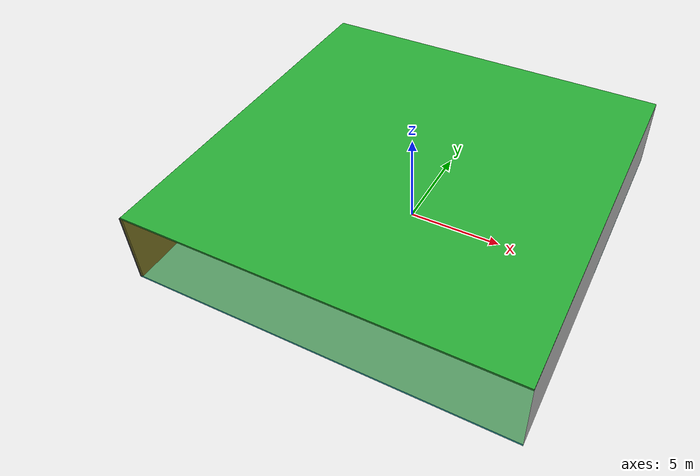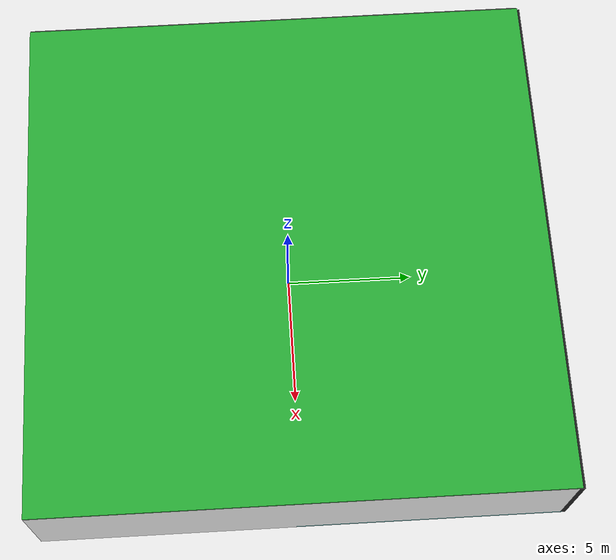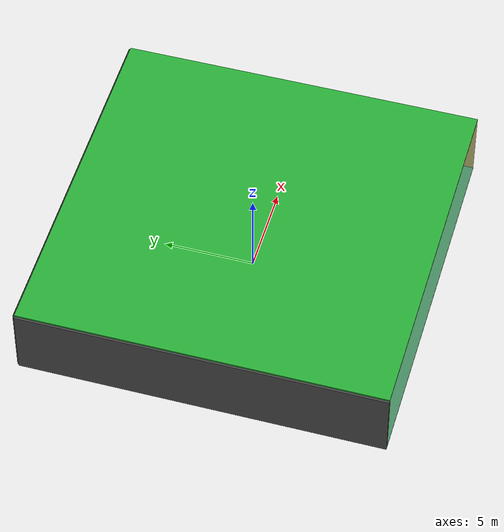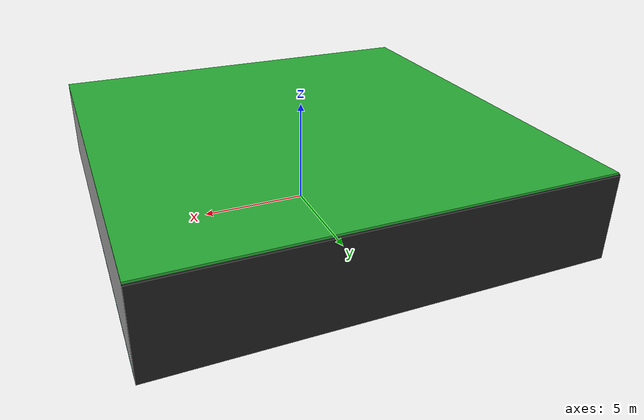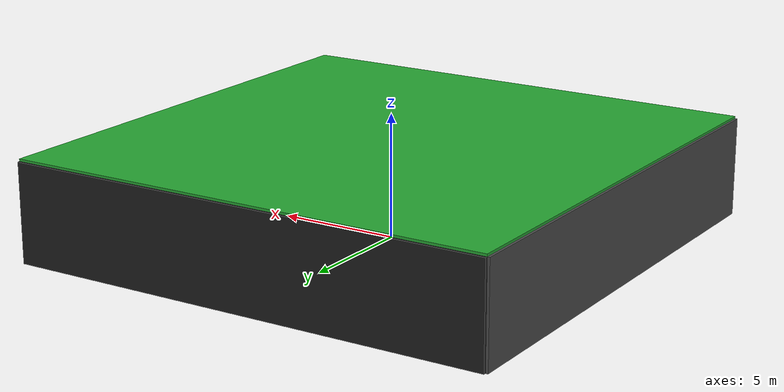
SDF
<sdf version="1.4">
 <world name="default">
  <physics type="ode">
   <max_step_size>0.001</max_step_size>
   <real_time_factor>1</real_time_factor>
   <real_time_update_rate>1000</real_time_update_rate>
   <gravity>0 0 -9.8</gravity>
  </physics>
  <scene><ambient>0.4 0.4 0.4 1</ambient><background>0.7 0.7 0.7 1</background><shadows>1</shadows></scene>
  <model name="Surrounding">
   <static>1</static>
   <link name="Ceiling">
    <collision name="Ceiling_Collision"><geometry><box><size>20 20 0.1</size></box></geometry></collision>
    <visual name="Ceiling_Visual">
     <geometry><box><size>20 20 0.1</size></box></geometry>
     <material>
      <script><uri>file://media/materials/scripts/gazebo.material</uri><name>Gazebo/GreenGlow</name></script>
     </material>
    </visual>
    <pose>0 0 4.05 0 0 0</pose>
   </link>
   <link name="Wall_South">
    <collision name="Wall_South_Collision">
     <geometry><box><size>20 0 4</size></box></geometry>
     <pose>0 0 2 0 -0 0</pose>
    </collision>
    <visual name="Wall_South_Visual">
     <pose>0 0 2 0 -0 0</pose>
     <geometry><box><size>20 0 4</size></box></geometry>
     <material>
      <script>
       <uri>file://media/materials/scripts/gazebo.material</uri>
       <name>Gazebo/YellowTransparent</name>
      </script>
     </material>
    </visual>
    <velocity_decay><linear>0</linear><angular>0</angular></velocity_decay>
    <pose>0 -10 0 0 -0 0</pose>
   </link>
   <link name="Wall_East">
    <collision name="Wall_21_Collision">
     <geometry><box><size>20 0 4</size></box></geometry>
     <pose>0 0 2 0 -0 0</pose>
    </collision>
    <visual name="Wall_21_Visual">
     <pose>0 0 2 0 -0 0</pose>
     <geometry><box><size>20 0 4</size></box></geometry>
     <material>
      <script><uri>file://media/materials/scripts/gazebo.material</uri><name>Gazebo/WhiteGlow</name></script>
     </material>
    </visual>
    <velocity_decay><linear>0</linear><angular>0</angular></velocity_decay>
    <pose>10 0 0 0 -0 1.5708</pose>
   </link>
   <link name="Wall_North">
    <collision name="Wall_22_Collision">
     <geometry><box><size>20 0.2 4</size></box></geometry>
     <pose>0 0 2 0 -0 0</pose>
    </collision>
    <visual name="Wall_22_Visual">
     <pose>0 0 2 0 -0 0</pose>
     <geometry><box><size>20 0.2 4</size></box></geometry>
     <material>
      <script><uri>file://media/materials/scripts/gazebo.material</uri><name>Gazebo/Black</name></script>
     </material>
    </visual>
    <velocity_decay><linear>0</linear><angular>0</angular></velocity_decay>
    <pose>0 10 0 0 -0 0</pose>
   </link>
   <link name="Wall_West">
    <collision name="Wall_23_Collision">
     <geometry><box><size>20 0.2 4</size></box></geometry>
     <pose>0 0 2 0 -0 0</pose>
    </collision>
    <visual name="Wall_23_Visual">
     <pose>0 0 2 0 -0 0</pose>
     <geometry><box><size>20 0.2 4</size></box></geometry>
     <material>
      <script><uri>file://media/materials/scripts/gazebo.material</uri><name>Gazebo/DarkGrey</name></script>
     </material>
    </visual>
    <velocity_decay><linear>0</linear><angular>0</angular></velocity_decay>
    <pose>-10 0 0 0 0 -1.5708</pose>
   </link>
   <link name="Ground_link">
    <collision name="collision">
     <pose>0 0 .05 0 -0 0</pose>
     <geometry><box><size>20 20 0.1</size></box></geometry>
    </collision>
    <visual name="visual">
     <pose>0 0 .05 0 -0 0</pose>
     <geometry><box><size>20 20 0.1</size></box></geometry>
     <material>
      <script>
       <uri>file://media/materials/scripts/gazebo.material</uri>
       <name>Gazebo/TurquoiseGlowOutline</name>
      </script>
     </material>
    </visual>
   </link>
   <static>1</static>
  </model>
  <spherical_coordinates>
   <surface_model>EARTH_WGS84</surface_model>
   <latitude_deg>0</latitude_deg>
   <longitude_deg>0</longitude_deg>
   <elevation>0</elevation>
   <heading_deg>0</heading_deg>
  </spherical_coordinates>
  <light name="lightball_0" type="diffuse">
   <diffuse>0.8 0.8 0.8 1</diffuse>
   <specular>0.2 0.2 0.2 1</specular>
   <attenuation>
    <range>100</range>
    <constant>0.7</constant>
    <linear>0.01</linear>
    <quadratic>0.001</quadratic>
   </attenuation>
   <direction>-0.5 0.1 -0.9</direction>
   <pose>-8.23664989023 6.800165422 2.76984490506 0 0 0</pose>
  </light>
  <light name="lightball_1" type="diffuse">
   <diffuse>0.8 0.8 0.8 1</diffuse>
   <specular>0.2 0.2 0.2 1</specular>
   <attenuation>
    <range>100</range>
    <constant>0.7</constant>
    <linear>0.01</linear>
    <quadratic>0.001</quadratic>
   </attenuation>
   <direction>-0.5 0.1 -0.9</direction>
   <pose>-1.71199901149 1.37757113081 3.85324247282 0 0 0</pose>
  </light>
  <light name="lightball_2" type="diffuse">
   <diffuse>0.8 0.8 0.8 1</diffuse>
   <specular>0.2 0.2 0.2 1</specular>
   <attenuation>
    <range>100</range>
    <constant>0.7</constant>
    <linear>0.01</linear>
    <quadratic>0.001</quadratic>
   </attenuation>
   <direction>-0.5 0.1 -0.9</direction>
   <pose>-5.22210921956 8.53621760629 1.9903797184 0 0 0</pose>
  </light>
  <light name="lightball_3" type="diffuse">
   <diffuse>0.8 0.8 0.8 1</diffuse>
   <specular>0.2 0.2 0.2 1</specular>
   <attenuation>
    <range>100</range>
    <constant>0.7</constant>
    <linear>0.01</linear>
    <quadratic>0.001</quadratic>
   </attenuation>
   <direction>-0.5 0.1 -0.9</direction>
   <pose>7.25136256309 8.87317792197 2.54636958319 0 0 0</pose>
  </light>
  <light name="lightball_4" type="diffuse">
   <diffuse>0.8 0.8 0.8 1</diffuse>
   <specular>0.2 0.2 0.2 1</specular>
   <attenuation>
    <range>100</range>
    <constant>0.7</constant>
    <linear>0.01</linear>
    <quadratic>0.001</quadratic>
   </attenuation>
   <direction>-0.5 0.1 -0.9</direction>
   <pose>6.26461896293 -6.22290965459 1.08854357502 0 0 0</pose>
  </light>
  <include>
   <uri>model://construction_cone</uri>
   <pose>1.6459866142 4.10606558707 0 0 0 0.544163843331</pose>
  </include>
  <include>
   <uri>model://robocup_3Dsim_goal</uri>
   <pose>5.39663847798 -2.15521161104 0 0 0 1.91657711253</pose>
  </include>
  <include>
   <uri>model://construction_cone</uri>
   <pose>4.87838943444 7.30681710868 0 0 0 2.78727303672</pose>
  </include>
 </world>
</sdf>

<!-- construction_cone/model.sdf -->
<sdf version="1.5">
  <model name="Construction Cone">
    <link name="link">
      <collision name="collision">
        <geometry>
          <mesh>
            <scale>10 10 10</scale>
            <uri>file://isr-testbed/construction_cone/meshes/construction_cone.dae</uri>
          </mesh>
        </geometry>
      </collision>
      <visual name="visual">
        <geometry>
          <mesh>
            <scale>10 10 10</scale>
            <uri>file://isr-testbed/construction_cone/meshes/construction_cone.dae</uri>
          </mesh>
        </geometry>
      </visual>
    </link>
  </model>
</sdf>

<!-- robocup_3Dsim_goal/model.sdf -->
<sdf version="1.5">
  <model name="robocup_3d_goal">
    <static>true</static>
    <link name="left_post">
      <pose>0 1.05 0.45 0 0 0</pose>
      <collision name="collision">
        <geometry>
          <cylinder>
            <radius>0.05</radius>
            <length>0.9</length>
          </cylinder>
        </geometry>
      </collision>
      <visual name="visual">
        <geometry>
          <cylinder>
            <radius>0.05</radius>
            <length>0.9</length>
          </cylinder>
        </geometry>
        <material>
          <script>
            <uri>file://media/materials/scripts/gazebo.material</uri>
            <name>Gazebo/ZincYellow</name>
          </script>
        </material>
      </visual>
    </link>
    <link name="left_support_horiz_lower">
      <pose>0.30 1.05 0.01 0 0 0</pose>
      <collision name="collision">
        <geometry>
          <box>
            <size>0.50 0.02 0.02</size>
          </box>
        </geometry>
      </collision>
      <visual name="visual">
        <geometry>
          <box>
            <size>0.50 0.02 0.02</size>
          </box>
        </geometry>
        <material>
          <script>
            <uri>file://media/materials/scripts/gazebo.material</uri>
            <name>Gazebo/White</name>
          </script>
        </material>
      </visual>
    </link>
    <link name="left_support_horiz_upper">
      <pose>0.30 1.05 0.79 0 0 0</pose>
      <collision name="collision">
        <geometry>
          <box>
            <size>0.50 0.02 0.02</size>
          </box>
        </geometry>
      </collision>
      <visual name="visual">
        <geometry>
          <box>
            <size>0.50 0.02 0.02</size>
          </box>
        </geometry>
        <material>
          <script>
            <uri>file://media/materials/scripts/gazebo.material</uri>
            <name>Gazebo/White</name>
          </script>
        </material>
      </visual>
    </link>
    <link name="left_support_vertical">
      <pose>0.56 1.05 0.4 0 1.5708 0</pose>
      <collision name="collision">
        <geometry>
          <box>
            <size>0.80 0.02 0.02</size>
          </box>
        </geometry>
      </collision>
      <visual name="visual">
        <geometry>
          <box>
            <size>0.80 0.02 0.02</size>
          </box>
        </geometry>
        <material>
          <script>
            <uri>file://media/materials/scripts/gazebo.material</uri>
            <name>Gazebo/White</name>
          </script>
        </material>
      </visual>
    </link>
    <link name="right_support_horiz_lower">
      <pose>0.30 -1.05 0.01 0 0 0</pose>
      <collision name="collision">
        <geometry>
          <box>
            <size>0.50 0.02 0.02</size>
          </box>
        </geometry>
      </collision>
      <visual name="visual">
        <geometry>
          <box>
            <size>0.50 0.02 0.02</size>
          </box>
        </geometry>
        <material>
          <script>
            <uri>file://media/materials/scripts/gazebo.material</uri>
            <name>Gazebo/White</name>
          </script>
        </material>
      </visual>
    </link>
    <link name="right_support_horiz_upper">
      <pose>0.30 -1.05 0.79 0 0 0</pose>
      <collision name="collision">
        <geometry>
          <box>
            <size>0.50 0.02 0.02</size>
          </box>
        </geometry>
      </collision>
      <visual name="visual">
        <geometry>
          <box>
            <size>0.50 0.02 0.02</size>
          </box>
        </geometry>
        <material>
          <script>
            <uri>file://media/materials/scripts/gazebo.material</uri>
            <name>Gazebo/White</name>
          </script>
        </material>
      </visual>
    </link>
    <link name="right_support_vertical">
      <pose>0.56 -1.05 0.4 0 1.5708 0</pose>
      <collision name="collision">
        <geometry>
          <box>
            <size>0.80 0.02 0.02</size>
          </box>
        </geometry>
      </collision>
      <visual name="visual">
        <geometry>
          <box>
            <size>0.80 0.02 0.02</size>
          </box>
        </geometry>
        <material>
          <script>
            <uri>file://media/materials/scripts/gazebo.material</uri>
            <name>Gazebo/White</name>
          </script>
        </material>
      </visual>
    </link>
    <link name="center_support_horiz_lower">
      <pose>0.56 0 0.01 0 1.5708 0</pose>
      <collision name="collision">
        <geometry>
          <box>
            <size>0.02 2.08 0.02</size>
          </box>
        </geometry>
      </collision>
      <visual name="visual">
        <geometry>
          <box>
            <size>0.02 2.08 0.02</size>
          </box>
        </geometry>
        <material>
          <script>
            <uri>file://media/materials/scripts/gazebo.material</uri>
            <name>Gazebo/White</name>
          </script>
        </material>
      </visual>
    </link>
    <link name="center_support_horiz_upper">
      <pose>0.56 0 0.79 0 1.5708 0</pose>
      <collision name="collision">
        <geometry>
          <box>
            <size>0.02 2.08 0.02</size>
          </box>
        </geometry>
      </collision>
      <visual name="visual">
        <geometry>
          <box>
            <size>0.02 2.08 0.02</size>
          </box>
        </geometry>
        <material>
          <script>
            <uri>file://media/materials/scripts/gazebo.material</uri>
            <name>Gazebo/White</name>
          </script>
        </material>
      </visual>
    </link>
    <link name="right_post">
      <pose>0 -1.05 0.45 0 0 0</pose>
      <collision name="collision">
        <geometry>
          <cylinder>
            <radius>0.05</radius>
            <length>0.9</length>
          </cylinder>
        </geometry>
      </collision>
      <visual name="visual">
        <geometry>
          <cylinder>
            <radius>0.05</radius>
            <length>0.9</length>
          </cylinder>
        </geometry>
        <material>
          <script>
            <uri>file://media/materials/scripts/gazebo.material</uri>
            <name>Gazebo/ZincYellow</name>
          </script>
        </material>
      </visual>
    </link>
    <link name="crossbar">
      <pose>0 0 0.85 1.57 1.57 0</pose>
      <collision name="collision">
        <geometry>
          <cylinder>
            <radius>0.05</radius>
            <length>2.0</length>
          </cylinder>
        </geometry>
      </collision>
      <visual name="visual">
        <geometry>
          <cylinder>
            <radius>0.05</radius>
            <length>2.0</length>
          </cylinder>
        </geometry>
        <material>
          <script>
            <uri>file://media/materials/scripts/gazebo.material</uri>
            <name>Gazebo/ZincYellow</name>
          </script>
        </material>
      </visual>
    </link>
    <link name="center_net">
      <pose>0.56 0 0.40 0 0 0</pose>
      <collision name="collision">
        <geometry>
          <box>
            <size>0.01 2.1 0.80</size>
          </box>
        </geometry>
      </collision>
      <visual name="visual">
        <geometry>
          <box>
            <size>0.01 2.1 0.80</size>
          </box>
        </geometry>
        <material>
          <script>
            <uri>model://../model_source/models/robocup09_spl_field/materials/scripts/</uri>
            <uri>model://../model_source/models/robocup09_spl_field/materials/textures/</uri>
            <name>RoboCup/Net</name>
          </script>
        </material>
      </visual>
    </link>
    <link name="left_net">
      <pose>0.30 1.05 0.40 0 0 0</pose>
      <collision name="collision">
        <geometry>
          <box>
            <size>0.50 0.01 0.76</size>
          </box>
        </geometry>
      </collision>
      <visual name="visual">
        <geometry>
          <box>
            <size>0.50 0.01 0.76</size>
          </box>
        </geometry>
        <material>
          <script>
            <uri>model://../model_source/models/robocup09_spl_field/materials/scripts/</uri>
            <uri>model://../model_source/models/robocup09_spl_field/materials/textures/</uri>
            <name>RoboCup/Net</name>
          </script>
        </material>
      </visual>
    </link>
    <link name="right_net">
      <pose>0.30 -1.05 0.40 0 0 0</pose>
      <collision name="collision">
        <geometry>
          <box>
            <size>0.50 0.01 0.76</size>
          </box>
        </geometry>
      </collision>
      <visual name="visual">
        <geometry>
          <box>
            <size>0.50 0.01 0.76</size>
          </box>
        </geometry>
        <material>
          <script>
            <uri>model://../model_source/models/robocup09_spl_field/materials/scripts/</uri>
            <uri>model://../model_source/models/robocup09_spl_field/materials/textures/</uri>
            <name>RoboCup/Net</name>
          </script>
        </material>
      </visual>
    </link>
  </model>
</sdf>
